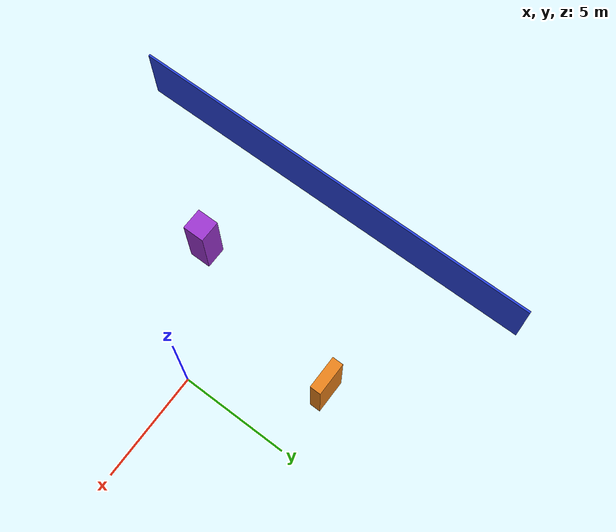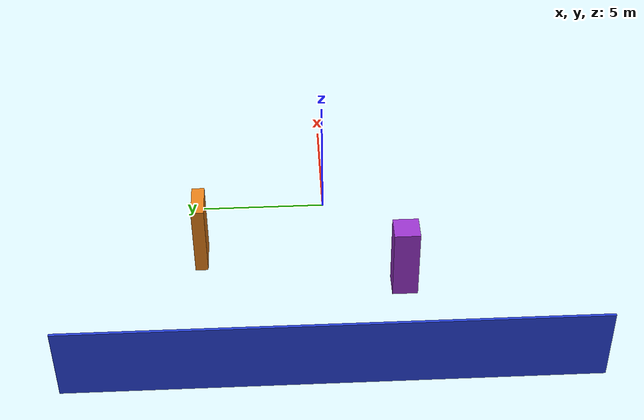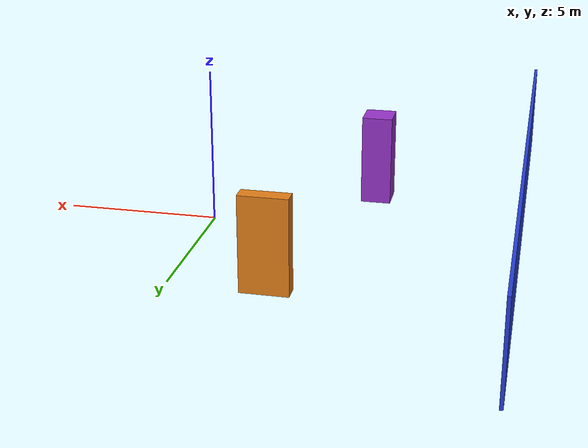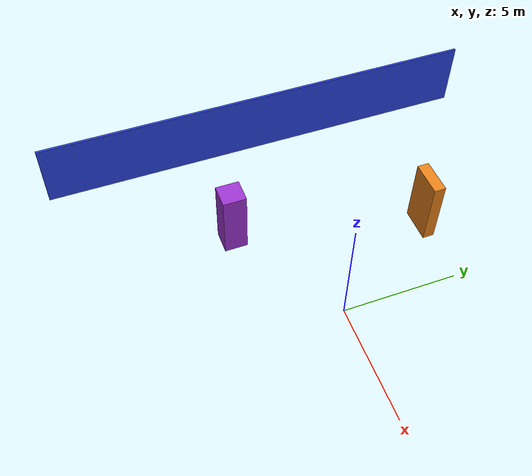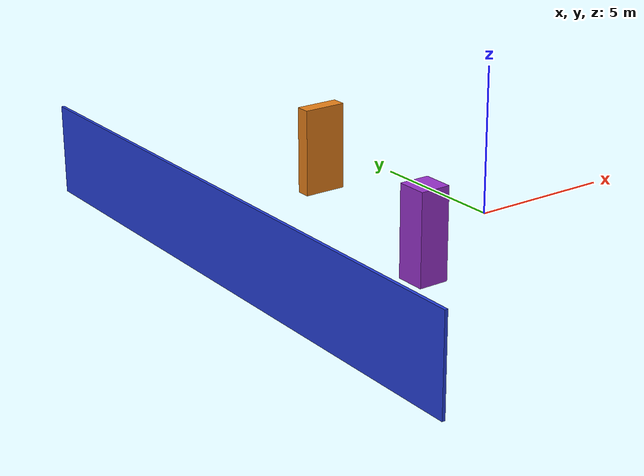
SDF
<sdf version="1.9">
 <world name="indoor_room_obstacles">
  <model name="ground_plane">
   <static>true</static>
   <link name="link">
    <collision name="collision">
     <geometry><plane><normal>0 0 1</normal><size>20 20</size></plane></geometry>
    </collision>
   </link>
  </model>
  <model name="wall_south">
   <static>true</static>
   <pose>-10 0 1.5 0 0 0</pose>
   <link name="link">
    <collision name="c"><geometry><box><size>0.1 20 3</size></box></geometry></collision>
    <visual name="v">
     <geometry><box><size>0.1 20 3</size></box></geometry>
     <material><diffuse>0.15 0.25 0.85 1</diffuse><ambient>0.15 0.25 0.85 1</ambient></material>
    </visual>
   </link>
  </model>
  <model name="box_obs_2">
   <static>true</static>
   <pose>-3 5 1.5 0 0 0</pose>
   <link name="link">
    <collision name="c"><geometry><box><size>1.5 0.5 3.0</size></box></geometry></collision>
    <visual name="v">
     <geometry><box><size>1.5 0.5 3.0</size></box></geometry>
     <material><diffuse>0.9 0.5 0.1 1</diffuse><ambient>0.9 0.5 0.1 1</ambient></material>
    </visual>
   </link>
  </model>
  <model name="box_obs_4">
   <static>true</static>
   <pose>-5 -3 1.5 0 0 0</pose>
   <link name="link">
    <collision name="c"><geometry><box><size>1.0 1.0 3.0</size></box></geometry></collision>
    <visual name="v">
     <geometry><box><size>1.0 1.0 3.0</size></box></geometry>
     <material><diffuse>0.6 0.2 0.8 1</diffuse><ambient>0.6 0.2 0.8 1</ambient></material>
    </visual>
   </link>
  </model>
 </world>
</sdf>
